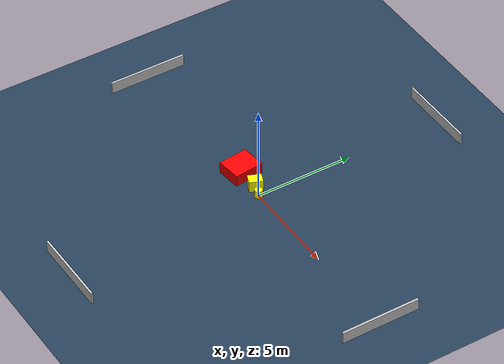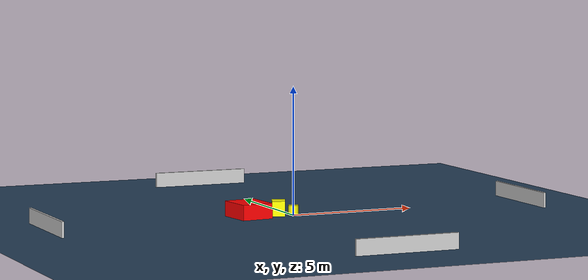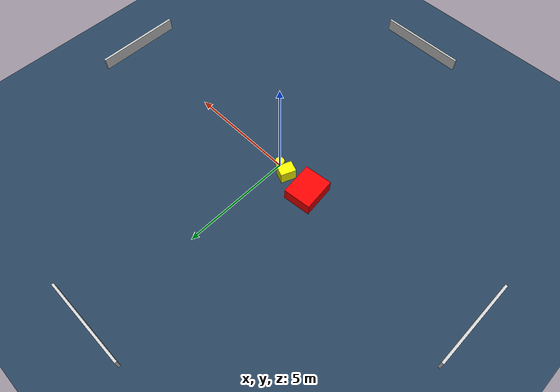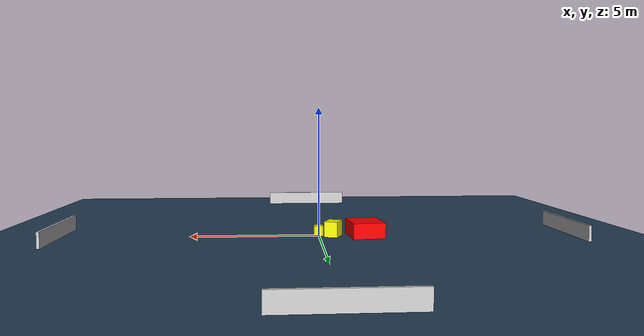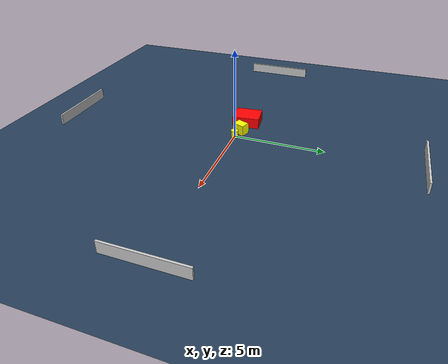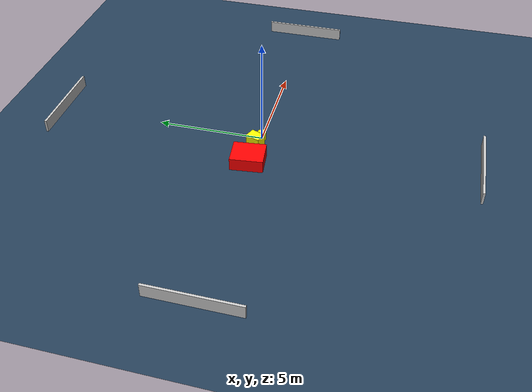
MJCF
<?xml version="1.0" ?>
<mujoco model="generated_environment">
  <option timestep="0.01" integrator="RK4" cone="elliptic"/>
  <default>
    <geom density="1"/>
  </default>
  <asset>
    <texture builtin="gradient" height="3072" name="skybox" rgb1="0.3 0.5 0.7" rgb2="0 0 0" type="skybox" width="512"/>
    <texture builtin="checker" height="300" name="groundplane" rgb1="0.2 0.3 0.4" rgb2="0.1 0.2 0.3" type="2d" width="300"/>
    <material name="groundplane" reflectance="0.2" texrepeat="5 5" texture="groundplane"/>
  </asset>
  <worldbody>
    <light dir="0 0 -1" directional="true" pos="0 0 1.5"/>
    <geom condim="3" friction="0.5 0.005 0.001" material="groundplane" name="floor" pos="0 0 0" size="0 0 0.05" type="plane"/>
    <body name="walls">
      <geom name="wall_1" condim="4" pos="-10.0 0.0 0.3" rgba="0.800000011920929 0.800000011920929 0.800000011920929 1.0" size="0.05 2.0 0.3" type="box"/>
      <geom name="wall_2" condim="4" pos="10.0 0.0 0.3" rgba="0.800000011920929 0.800000011920929 0.800000011920929 1.0" size="0.05 2.0 0.3" type="box"/>
      <geom name="wall_3" condim="4" pos="0.0 -10.0 0.3" rgba="0.800000011920929 0.800000011920929 0.800000011920929 1.0" size="2.0 0.05 0.3" type="box"/>
      <geom name="wall_4" condim="4" pos="0.0 10.0 0.3" rgba="0.800000011920929 0.800000011920929 0.800000011920929 1.0" size="2.0 0.05 0.3" type="box"/>
    </body>
    <body name="robot">
      <joint name="joint_x" type="slide" pos="0 0 0" axis="1 0 0"/>
      <joint name="joint_y" type="slide" pos="0 0 0" axis="0 1 0"/>
      <geom name="robot" type="cylinder" pos="0.0 0.0 0.2" size="0.2 0.2 0.0" mass="5.0" friction="1.0 0.005 0.0001" condim="4" rgba="1.0 1.0 0.0 1.0"/>
    </body>
    <body name="obstacle_1_movable">
      <geom name="obstacle_1_movable" condim="4" pos="-0.5588931452735661 0.17133624341710527 0.3" euler="0 0 337.671774459769" friction="0.0 0.005 0.001" rgba="1.0 1.0 0.0 1.0" size="0.25850849711265755 0.342030531905964 0.3" type="box" mass="0.1"/>
      <joint type="free"/>
    </body>
    <body name="obstacle_2_static">
      <geom name="obstacle_2_static" condim="4" pos="-1.8100077094233185 0.17646020892199926 0.3" euler="0 0 276.1681848066176" friction="0.0 0.005 0.001" rgba="1.0 0.0 0.0 1.0" size="0.7514998067061696 0.6306078556269236 0.3" type="box"/>
    </body>
  </worldbody>
  <actuator>
    <motor name="actuator_x" joint="joint_x" gear="1" ctrlrange="-1 1"/>
    <motor name="actuator_y" joint="joint_y" gear="1" ctrlrange="-1 1"/>
  </actuator>
</mujoco>
